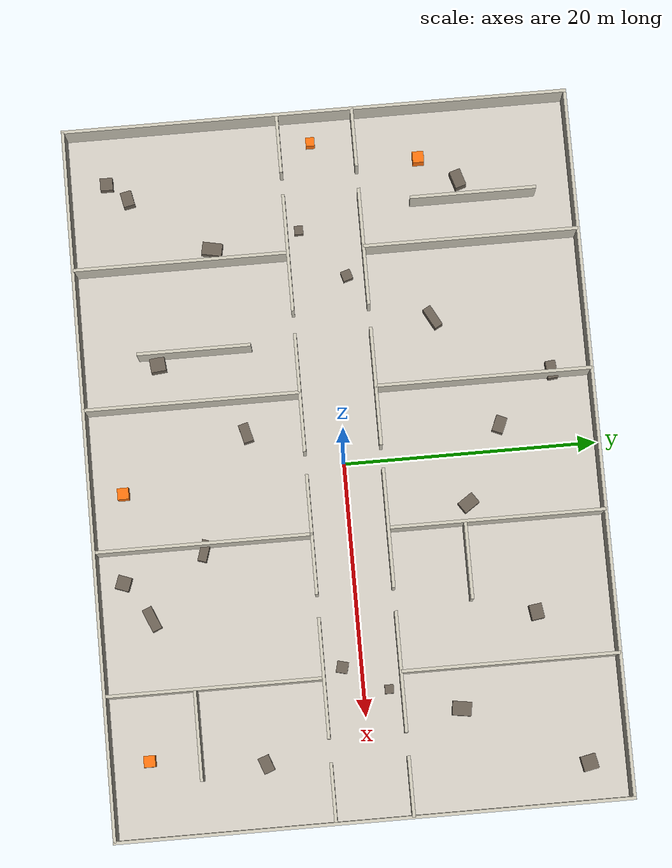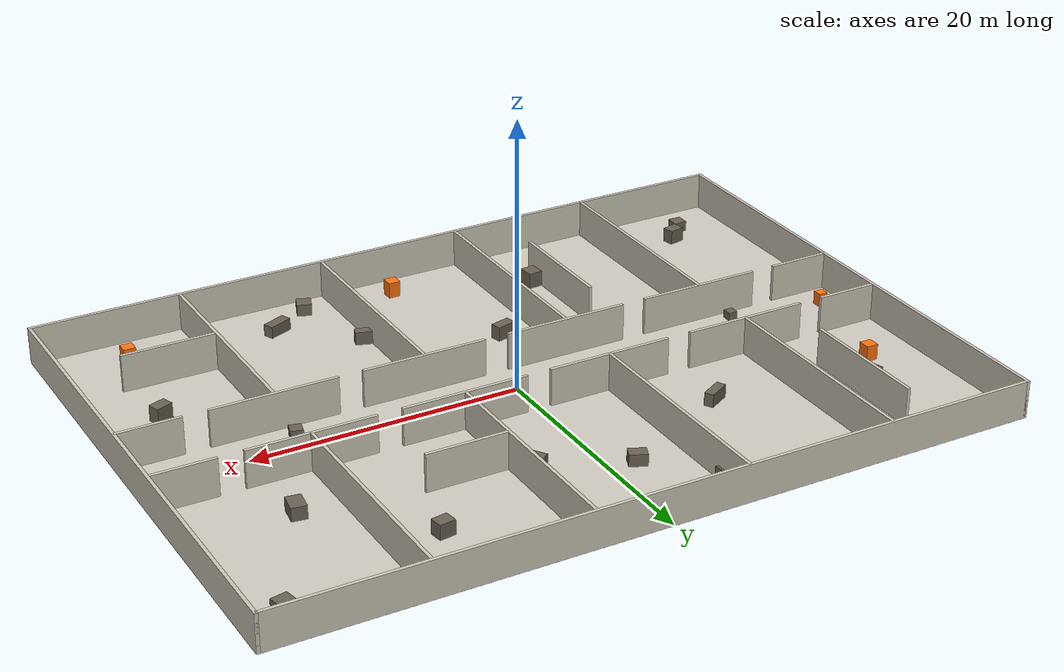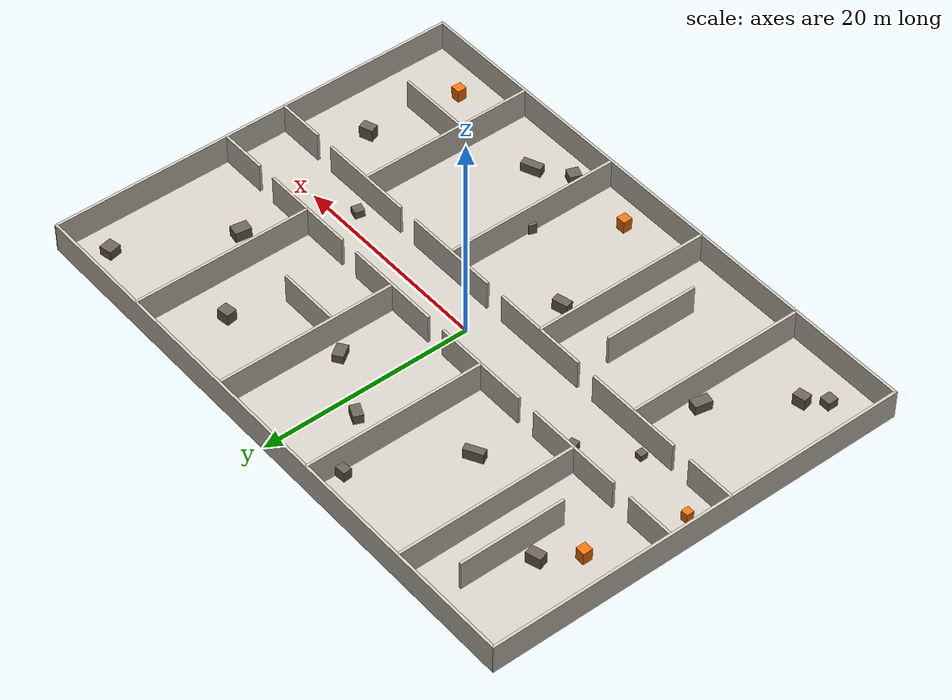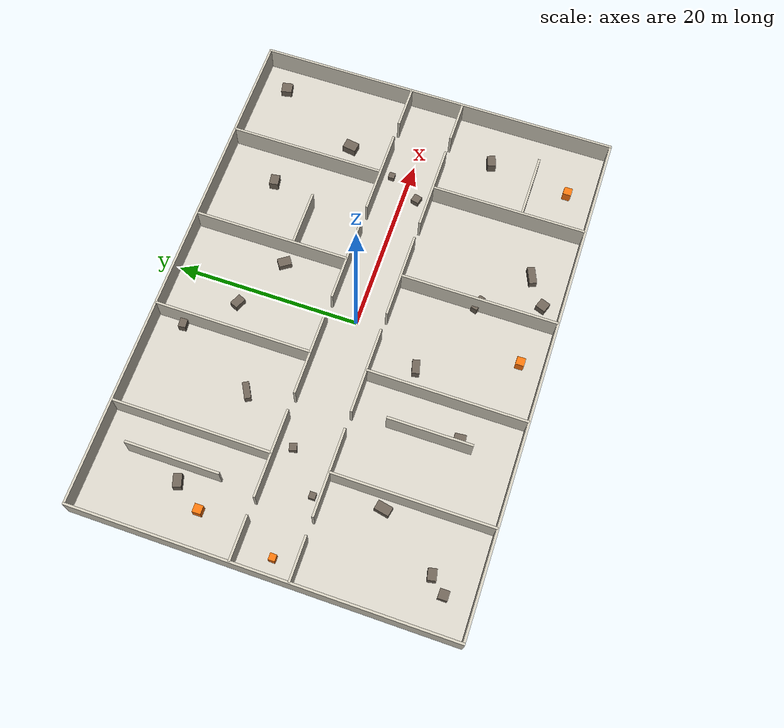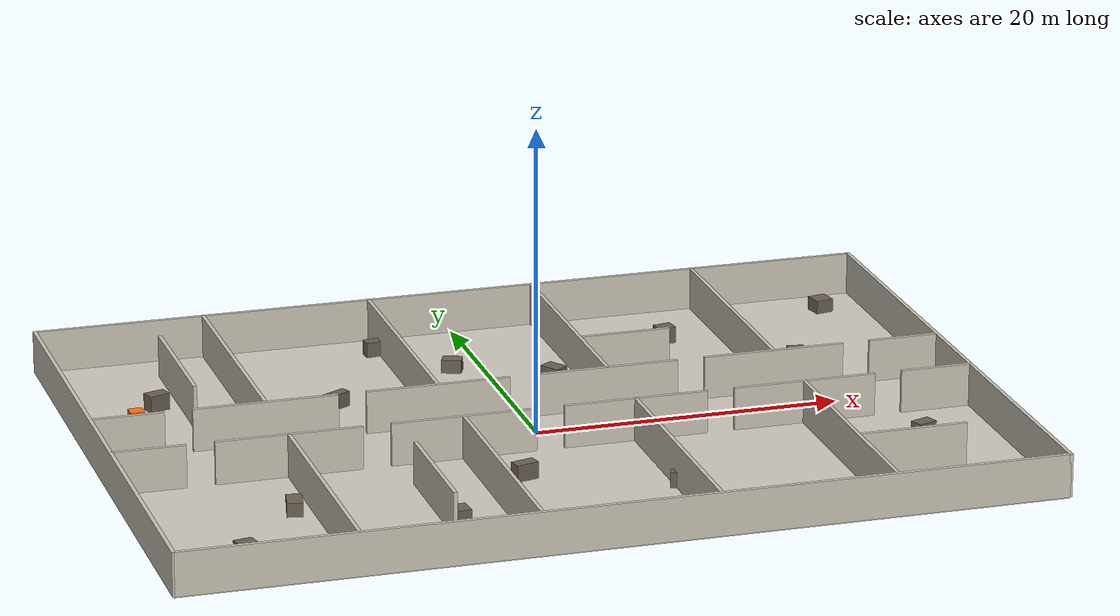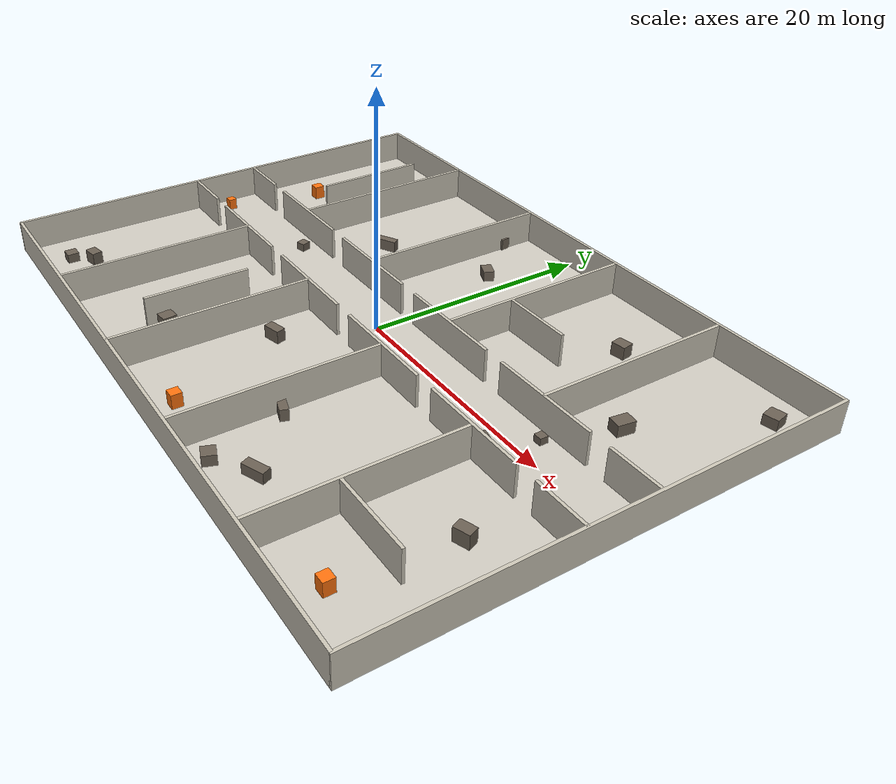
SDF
<sdf version="1.7">
 <world name="rescue_building_large">
  <model name="floor">
   <static>true</static>
   <pose>0 0 -0.05 0 0 0.0</pose>
   <link name="link">
    <collision name="col"><geometry><box><size>56.0 40.0 0.1</size></box></geometry></collision>
    <visual name="vis">
     <geometry><box><size>56.0 40.0 0.1</size></box></geometry>
     <material><ambient>0.82 0.8 0.76 1</ambient><diffuse>0.82 0.8 0.76 1</diffuse></material>
    </visual>
   </link>
  </model>
  <model name="outer_wall_north">
   <static>true</static>
   <pose>0 20.0 1.4 0 0 0.0</pose>
   <link name="link">
    <collision name="col"><geometry><box><size>56.0 0.25 2.8</size></box></geometry></collision>
    <visual name="vis">
     <geometry><box><size>56.0 0.25 2.8</size></box></geometry>
     <material><ambient>0.8 0.78 0.72 1</ambient><diffuse>0.8 0.78 0.72 1</diffuse></material>
    </visual>
   </link>
  </model>
  <model name="outer_wall_south">
   <static>true</static>
   <pose>0 -20.0 1.4 0 0 0.0</pose>
   <link name="link">
    <collision name="col"><geometry><box><size>56.0 0.25 2.8</size></box></geometry></collision>
    <visual name="vis">
     <geometry><box><size>56.0 0.25 2.8</size></box></geometry>
     <material><ambient>0.8 0.78 0.72 1</ambient><diffuse>0.8 0.78 0.72 1</diffuse></material>
    </visual>
   </link>
  </model>
  <model name="outer_wall_east">
   <static>true</static>
   <pose>28.0 0 1.4 0 0 0.0</pose>
   <link name="link">
    <collision name="col"><geometry><box><size>0.25 40.25 2.8</size></box></geometry></collision>
    <visual name="vis">
     <geometry><box><size>0.25 40.25 2.8</size></box></geometry>
     <material><ambient>0.8 0.78 0.72 1</ambient><diffuse>0.8 0.78 0.72 1</diffuse></material>
    </visual>
   </link>
  </model>
  <model name="outer_wall_west">
   <static>true</static>
   <pose>-28.0 0 1.4 0 0 0.0</pose>
   <link name="link">
    <collision name="col"><geometry><box><size>0.25 40.25 2.8</size></box></geometry></collision>
    <visual name="vis">
     <geometry><box><size>0.25 40.25 2.8</size></box></geometry>
     <material><ambient>0.8 0.78 0.72 1</ambient><diffuse>0.8 0.78 0.72 1</diffuse></material>
    </visual>
   </link>
  </model>
  <model name="corridor_wall_north_0">
   <static>true</static>
   <pose>-25.65 3.0 1.4 0 0 0.0</pose>
   <link name="link">
    <collision name="col"><geometry><box><size>4.700000000000003 0.25 2.8</size></box></geometry></collision>
    <visual name="vis">
     <geometry><box><size>4.700000000000003 0.25 2.8</size></box></geometry>
     <material><ambient>0.8 0.78 0.72 1</ambient><diffuse>0.8 0.78 0.72 1</diffuse></material>
    </visual>
   </link>
  </model>
  <model name="corridor_wall_north_2">
   <static>true</static>
   <pose>-16.8 3.0 1.4 0 0 0.0</pose>
   <link name="link">
    <collision name="col"><geometry><box><size>9.399999999999997 0.25 2.8</size></box></geometry></collision>
    <visual name="vis">
     <geometry><box><size>9.399999999999997 0.25 2.8</size></box></geometry>
     <material><ambient>0.8 0.78 0.72 1</ambient><diffuse>0.8 0.78 0.72 1</diffuse></material>
    </visual>
   </link>
  </model>
  <model name="corridor_wall_north_4">
   <static>true</static>
   <pose>-5.600000000000001 3.0 1.4 0 0 0.0</pose>
   <link name="link">
    <collision name="col"><geometry><box><size>9.400000000000002 0.25 2.8</size></box></geometry></collision>
    <visual name="vis">
     <geometry><box><size>9.400000000000002 0.25 2.8</size></box></geometry>
     <material><ambient>0.8 0.78 0.72 1</ambient><diffuse>0.8 0.78 0.72 1</diffuse></material>
    </visual>
   </link>
  </model>
  <model name="corridor_wall_north_6">
   <static>true</static>
   <pose>5.599999999999998 3.0 1.4 0 0 0.0</pose>
   <link name="link">
    <collision name="col"><geometry><box><size>9.399999999999995 0.25 2.8</size></box></geometry></collision>
    <visual name="vis">
     <geometry><box><size>9.399999999999995 0.25 2.8</size></box></geometry>
     <material><ambient>0.8 0.78 0.72 1</ambient><diffuse>0.8 0.78 0.72 1</diffuse></material>
    </visual>
   </link>
  </model>
  <model name="corridor_wall_north_8">
   <static>true</static>
   <pose>16.799999999999997 3.0 1.4 0 0 0.0</pose>
   <link name="link">
    <collision name="col"><geometry><box><size>9.400000000000004 0.25 2.8</size></box></geometry></collision>
    <visual name="vis">
     <geometry><box><size>9.400000000000004 0.25 2.8</size></box></geometry>
     <material><ambient>0.8 0.78 0.72 1</ambient><diffuse>0.8 0.78 0.72 1</diffuse></material>
    </visual>
   </link>
  </model>
  <model name="corridor_wall_north_10">
   <static>true</static>
   <pose>25.65 3.0 1.4 0 0 0.0</pose>
   <link name="link">
    <collision name="col"><geometry><box><size>4.700000000000003 0.25 2.8</size></box></geometry></collision>
    <visual name="vis">
     <geometry><box><size>4.700000000000003 0.25 2.8</size></box></geometry>
     <material><ambient>0.8 0.78 0.72 1</ambient><diffuse>0.8 0.78 0.72 1</diffuse></material>
    </visual>
   </link>
  </model>
  <model name="corridor_wall_south_0">
   <static>true</static>
   <pose>-25.65 -3.0 1.4 0 0 0.0</pose>
   <link name="link">
    <collision name="col"><geometry><box><size>4.700000000000003 0.25 2.8</size></box></geometry></collision>
    <visual name="vis">
     <geometry><box><size>4.700000000000003 0.25 2.8</size></box></geometry>
     <material><ambient>0.8 0.78 0.72 1</ambient><diffuse>0.8 0.78 0.72 1</diffuse></material>
    </visual>
   </link>
  </model>
  <model name="corridor_wall_south_2">
   <static>true</static>
   <pose>-16.8 -3.0 1.4 0 0 0.0</pose>
   <link name="link">
    <collision name="col"><geometry><box><size>9.399999999999997 0.25 2.8</size></box></geometry></collision>
    <visual name="vis">
     <geometry><box><size>9.399999999999997 0.25 2.8</size></box></geometry>
     <material><ambient>0.8 0.78 0.72 1</ambient><diffuse>0.8 0.78 0.72 1</diffuse></material>
    </visual>
   </link>
  </model>
  <model name="corridor_wall_south_4">
   <static>true</static>
   <pose>-5.600000000000001 -3.0 1.4 0 0 0.0</pose>
   <link name="link">
    <collision name="col"><geometry><box><size>9.400000000000002 0.25 2.8</size></box></geometry></collision>
    <visual name="vis">
     <geometry><box><size>9.400000000000002 0.25 2.8</size></box></geometry>
     <material><ambient>0.8 0.78 0.72 1</ambient><diffuse>0.8 0.78 0.72 1</diffuse></material>
    </visual>
   </link>
  </model>
  <model name="corridor_wall_south_6">
   <static>true</static>
   <pose>5.599999999999998 -3.0 1.4 0 0 0.0</pose>
   <link name="link">
    <collision name="col"><geometry><box><size>9.399999999999995 0.25 2.8</size></box></geometry></collision>
    <visual name="vis">
     <geometry><box><size>9.399999999999995 0.25 2.8</size></box></geometry>
     <material><ambient>0.8 0.78 0.72 1</ambient><diffuse>0.8 0.78 0.72 1</diffuse></material>
    </visual>
   </link>
  </model>
  <model name="corridor_wall_south_8">
   <static>true</static>
   <pose>16.799999999999997 -3.0 1.4 0 0 0.0</pose>
   <link name="link">
    <collision name="col"><geometry><box><size>9.400000000000004 0.25 2.8</size></box></geometry></collision>
    <visual name="vis">
     <geometry><box><size>9.400000000000004 0.25 2.8</size></box></geometry>
     <material><ambient>0.8 0.78 0.72 1</ambient><diffuse>0.8 0.78 0.72 1</diffuse></material>
    </visual>
   </link>
  </model>
  <model name="corridor_wall_south_10">
   <static>true</static>
   <pose>25.65 -3.0 1.4 0 0 0.0</pose>
   <link name="link">
    <collision name="col"><geometry><box><size>4.700000000000003 0.25 2.8</size></box></geometry></collision>
    <visual name="vis">
     <geometry><box><size>4.700000000000003 0.25 2.8</size></box></geometry>
     <material><ambient>0.8 0.78 0.72 1</ambient><diffuse>0.8 0.78 0.72 1</diffuse></material>
    </visual>
   </link>
  </model>
  <model name="divider_north_1">
   <static>true</static>
   <pose>-16.8 11.5 1.4 0 0 0.0</pose>
   <link name="link">
    <collision name="col"><geometry><box><size>0.25 17.0 2.8</size></box></geometry></collision>
    <visual name="vis">
     <geometry><box><size>0.25 17.0 2.8</size></box></geometry>
     <material><ambient>0.8 0.78 0.72 1</ambient><diffuse>0.8 0.78 0.72 1</diffuse></material>
    </visual>
   </link>
  </model>
  <model name="divider_south_1">
   <static>true</static>
   <pose>-16.8 -11.5 1.4 0 0 0.0</pose>
   <link name="link">
    <collision name="col"><geometry><box><size>0.25 17.0 2.8</size></box></geometry></collision>
    <visual name="vis">
     <geometry><box><size>0.25 17.0 2.8</size></box></geometry>
     <material><ambient>0.8 0.78 0.72 1</ambient><diffuse>0.8 0.78 0.72 1</diffuse></material>
    </visual>
   </link>
  </model>
  <model name="divider_north_2">
   <static>true</static>
   <pose>-5.600000000000001 11.5 1.4 0 0 0.0</pose>
   <link name="link">
    <collision name="col"><geometry><box><size>0.25 17.0 2.8</size></box></geometry></collision>
    <visual name="vis">
     <geometry><box><size>0.25 17.0 2.8</size></box></geometry>
     <material><ambient>0.8 0.78 0.72 1</ambient><diffuse>0.8 0.78 0.72 1</diffuse></material>
    </visual>
   </link>
  </model>
  <model name="divider_south_2">
   <static>true</static>
   <pose>-5.600000000000001 -11.5 1.4 0 0 0.0</pose>
   <link name="link">
    <collision name="col"><geometry><box><size>0.25 17.0 2.8</size></box></geometry></collision>
    <visual name="vis">
     <geometry><box><size>0.25 17.0 2.8</size></box></geometry>
     <material><ambient>0.8 0.78 0.72 1</ambient><diffuse>0.8 0.78 0.72 1</diffuse></material>
    </visual>
   </link>
  </model>
  <model name="divider_north_3">
   <static>true</static>
   <pose>5.599999999999994 11.5 1.4 0 0 0.0</pose>
   <link name="link">
    <collision name="col"><geometry><box><size>0.25 17.0 2.8</size></box></geometry></collision>
    <visual name="vis">
     <geometry><box><size>0.25 17.0 2.8</size></box></geometry>
     <material><ambient>0.8 0.78 0.72 1</ambient><diffuse>0.8 0.78 0.72 1</diffuse></material>
    </visual>
   </link>
  </model>
  <model name="divider_south_3">
   <static>true</static>
   <pose>5.599999999999994 -11.5 1.4 0 0 0.0</pose>
   <link name="link">
    <collision name="col"><geometry><box><size>0.25 17.0 2.8</size></box></geometry></collision>
    <visual name="vis">
     <geometry><box><size>0.25 17.0 2.8</size></box></geometry>
     <material><ambient>0.8 0.78 0.72 1</ambient><diffuse>0.8 0.78 0.72 1</diffuse></material>
    </visual>
   </link>
  </model>
  <model name="divider_north_4">
   <static>true</static>
   <pose>16.799999999999997 11.5 1.4 0 0 0.0</pose>
   <link name="link">
    <collision name="col"><geometry><box><size>0.25 17.0 2.8</size></box></geometry></collision>
    <visual name="vis">
     <geometry><box><size>0.25 17.0 2.8</size></box></geometry>
     <material><ambient>0.8 0.78 0.72 1</ambient><diffuse>0.8 0.78 0.72 1</diffuse></material>
    </visual>
   </link>
  </model>
  <model name="divider_south_4">
   <static>true</static>
   <pose>16.799999999999997 -11.5 1.4 0 0 0.0</pose>
   <link name="link">
    <collision name="col"><geometry><box><size>0.25 17.0 2.8</size></box></geometry></collision>
    <visual name="vis">
     <geometry><box><size>0.25 17.0 2.8</size></box></geometry>
     <material><ambient>0.8 0.78 0.72 1</ambient><diffuse>0.8 0.78 0.72 1</diffuse></material>
    </visual>
   </link>
  </model>
  <model name="inner_n1">
   <static>true</static>
   <pose>-20.4 12.0 1.4 0 0 0.0</pose>
   <link name="link">
    <collision name="col"><geometry><box><size>0.25 10.0 2.8</size></box></geometry></collision>
    <visual name="vis">
     <geometry><box><size>0.25 10.0 2.8</size></box></geometry>
     <material><ambient>0.8 0.78 0.72 1</ambient><diffuse>0.8 0.78 0.72 1</diffuse></material>
    </visual>
   </link>
  </model>
  <model name="inner_n4">
   <static>true</static>
   <pose>8.699999999999996 9.0 1.4 0 0 0.0</pose>
   <link name="link">
    <collision name="col"><geometry><box><size>6.0 0.25 2.8</size></box></geometry></collision>
    <visual name="vis">
     <geometry><box><size>6.0 0.25 2.8</size></box></geometry>
     <material><ambient>0.8 0.78 0.72 1</ambient><diffuse>0.8 0.78 0.72 1</diffuse></material>
    </visual>
   </link>
  </model>
  <model name="inner_s2">
   <static>true</static>
   <pose>-9.700000000000003 -11.0 1.4 0 0 0.0</pose>
   <link name="link">
    <collision name="col"><geometry><box><size>0.25 9.0 2.8</size></box></geometry></collision>
    <visual name="vis">
     <geometry><box><size>0.25 9.0 2.8</size></box></geometry>
     <material><ambient>0.8 0.78 0.72 1</ambient><diffuse>0.8 0.78 0.72 1</diffuse></material>
    </visual>
   </link>
  </model>
  <model name="inner_s5">
   <static>true</static>
   <pose>20.4 -13.0 1.4 0 0 0.0</pose>
   <link name="link">
    <collision name="col"><geometry><box><size>7.0 0.25 2.8</size></box></geometry></collision>
    <visual name="vis">
     <geometry><box><size>7.0 0.25 2.8</size></box></geometry>
     <material><ambient>0.8 0.78 0.72 1</ambient><diffuse>0.8 0.78 0.72 1</diffuse></material>
    </visual>
   </link>
  </model>
  <model name="debris_1">
   <static>true</static>
   <pose>-22 11 0.55 0 0 0.3</pose>
   <link name="link">
    <collision name="col"><geometry><box><size>1.4 0.9 1.1</size></box></geometry></collision>
    <visual name="vis">
     <geometry><box><size>1.4 0.9 1.1</size></box></geometry>
     <material><ambient>0.42 0.38 0.33 1</ambient><diffuse>0.42 0.38 0.33 1</diffuse></material>
    </visual>
   </link>
  </model>
  <model name="debris_2">
   <static>true</static>
   <pose>-18 -9 0.45 0 0 -0.2</pose>
   <link name="link">
    <collision name="col"><geometry><box><size>1.0 1.6 0.9</size></box></geometry></collision>
    <visual name="vis">
     <geometry><box><size>1.0 1.6 0.9</size></box></geometry>
     <material><ambient>0.42 0.38 0.33 1</ambient><diffuse>0.42 0.38 0.33 1</diffuse></material>
    </visual>
   </link>
  </model>
  <model name="debris_3">
   <static>true</static>
   <pose>-11 8 0.5 0 0 0.5</pose>
   <link name="link">
    <collision name="col"><geometry><box><size>1.8 0.7 1.0</size></box></geometry></collision>
    <visual name="vis">
     <geometry><box><size>1.8 0.7 1.0</size></box></geometry>
     <material><ambient>0.42 0.38 0.33 1</ambient><diffuse>0.42 0.38 0.33 1</diffuse></material>
    </visual>
   </link>
  </model>
  <model name="debris_4">
   <static>true</static>
   <pose>-9 -14 0.6 0 0 0.1</pose>
   <link name="link">
    <collision name="col"><geometry><box><size>1.1 1.2 1.2</size></box></geometry></collision>
    <visual name="vis">
     <geometry><box><size>1.1 1.2 1.2</size></box></geometry>
     <material><ambient>0.42 0.38 0.33 1</ambient><diffuse>0.42 0.38 0.33 1</diffuse></material>
    </visual>
   </link>
  </model>
  <model name="debris_5">
   <static>true</static>
   <pose>-2 12.5 0.45 0 0 -0.4</pose>
   <link name="link">
    <collision name="col"><geometry><box><size>1.3 0.9 0.9</size></box></geometry></collision>
    <visual name="vis">
     <geometry><box><size>1.3 0.9 0.9</size></box></geometry>
     <material><ambient>0.42 0.38 0.33 1</ambient><diffuse>0.42 0.38 0.33 1</diffuse></material>
    </visual>
   </link>
  </model>
  <model name="debris_6">
   <static>true</static>
   <pose>-3 -7.5 0.55 0 0 0.25</pose>
   <link name="link">
    <collision name="col"><geometry><box><size>1.5 0.8 1.1</size></box></geometry></collision>
    <visual name="vis">
     <geometry><box><size>1.5 0.8 1.1</size></box></geometry>
     <material><ambient>0.42 0.38 0.33 1</ambient><diffuse>0.42 0.38 0.33 1</diffuse></material>
    </visual>
   </link>
  </model>
  <model name="debris_7">
   <static>true</static>
   <pose>4 9.5 0.4 0 0 0.6</pose>
   <link name="link">
    <collision name="col"><geometry><box><size>1.0 1.4 0.8</size></box></geometry></collision>
    <visual name="vis">
     <geometry><box><size>1.0 1.4 0.8</size></box></geometry>
     <material><ambient>0.42 0.38 0.33 1</ambient><diffuse>0.42 0.38 0.33 1</diffuse></material>
    </visual>
   </link>
  </model>
  <model name="debris_8">
   <static>true</static>
   <pose>6 -11.5 0.5 0 0 -0.3</pose>
   <link name="link">
    <collision name="col"><geometry><box><size>1.7 0.7 1.0</size></box></geometry></collision>
    <visual name="vis">
     <geometry><box><size>1.7 0.7 1.0</size></box></geometry>
     <material><ambient>0.42 0.38 0.33 1</ambient><diffuse>0.42 0.38 0.33 1</diffuse></material>
    </visual>
   </link>
  </model>
  <model name="debris_9">
   <static>true</static>
   <pose>13 14 0.55 0 0 0.15</pose>
   <link name="link">
    <collision name="col"><geometry><box><size>1.2 1.0 1.1</size></box></geometry></collision>
    <visual name="vis">
     <geometry><box><size>1.2 1.0 1.1</size></box></geometry>
     <material><ambient>0.42 0.38 0.33 1</ambient><diffuse>0.42 0.38 0.33 1</diffuse></material>
    </visual>
   </link>
  </model>
  <model name="debris_10">
   <static>true</static>
   <pose>11 -16 0.45 0 0 0.4</pose>
   <link name="link">
    <collision name="col"><geometry><box><size>1.9 0.8 0.9</size></box></geometry></collision>
    <visual name="vis">
     <geometry><box><size>1.9 0.8 0.9</size></box></geometry>
     <material><ambient>0.42 0.38 0.33 1</ambient><diffuse>0.42 0.38 0.33 1</diffuse></material>
    </visual>
   </link>
  </model>
  <model name="debris_11">
   <static>true</static>
   <pose>20 7.5 0.5 0 0 -0.15</pose>
   <link name="link">
    <collision name="col"><geometry><box><size>1.1 1.5 1.0</size></box></geometry></collision>
    <visual name="vis">
     <geometry><box><size>1.1 1.5 1.0</size></box></geometry>
     <material><ambient>0.42 0.38 0.33 1</ambient><diffuse>0.42 0.38 0.33 1</diffuse></material>
    </visual>
   </link>
  </model>
  <model name="debris_12">
   <static>true</static>
   <pose>23 -8 0.6 0 0 0.35</pose>
   <link name="link">
    <collision name="col"><geometry><box><size>1.3 0.9 1.2</size></box></geometry></collision>
    <visual name="vis">
     <geometry><box><size>1.3 0.9 1.2</size></box></geometry>
     <material><ambient>0.42 0.38 0.33 1</ambient><diffuse>0.42 0.38 0.33 1</diffuse></material>
    </visual>
   </link>
  </model>
  <model name="debris_13">
   <static>true</static>
   <pose>-24 -17 0.4 0 0 0.0</pose>
   <link name="link">
    <collision name="col"><geometry><box><size>1.0 1.0 0.8</size></box></geometry></collision>
    <visual name="vis">
     <geometry><box><size>1.0 1.0 0.8</size></box></geometry>
     <material><ambient>0.42 0.38 0.33 1</ambient><diffuse>0.42 0.38 0.33 1</diffuse></material>
    </visual>
   </link>
  </model>
  <model name="debris_14">
   <static>true</static>
   <pose>25 17 0.45 0 0 0.2</pose>
   <link name="link">
    <collision name="col"><geometry><box><size>1.2 1.2 0.9</size></box></geometry></collision>
    <visual name="vis">
     <geometry><box><size>1.2 1.2 0.9</size></box></geometry>
     <material><ambient>0.42 0.38 0.33 1</ambient><diffuse>0.42 0.38 0.33 1</diffuse></material>
    </visual>
   </link>
  </model>
  <model name="debris_15">
   <static>true</static>
   <pose>-15 1.5 0.35 0 0 0.3</pose>
   <link name="link">
    <collision name="col"><geometry><box><size>0.8 0.8 0.7</size></box></geometry></collision>
    <visual name="vis">
     <geometry><box><size>0.8 0.8 0.7</size></box></geometry>
     <material><ambient>0.42 0.38 0.33 1</ambient><diffuse>0.42 0.38 0.33 1</diffuse></material>
    </visual>
   </link>
  </model>
  <model name="debris_16">
   <static>true</static>
   <pose>16 -1.5 0.35 0 0 -0.25</pose>
   <link name="link">
    <collision name="col"><geometry><box><size>0.9 0.9 0.7</size></box></geometry></collision>
    <visual name="vis">
     <geometry><box><size>0.9 0.9 0.7</size></box></geometry>
     <material><ambient>0.42 0.38 0.33 1</ambient><diffuse>0.42 0.38 0.33 1</diffuse></material>
    </visual>
   </link>
  </model>
  <model name="debris_17">
   <static>true</static>
   <pose>-6 17 0.5 0 0 0.1</pose>
   <link name="link">
    <collision name="col"><geometry><box><size>1.4 0.8 1.0</size></box></geometry></collision>
    <visual name="vis">
     <geometry><box><size>1.4 0.8 1.0</size></box></geometry>
     <material><ambient>0.42 0.38 0.33 1</ambient><diffuse>0.42 0.38 0.33 1</diffuse></material>
    </visual>
   </link>
  </model>
  <model name="debris_18">
   <static>true</static>
   <pose>8 -18 0.45 0 0 -0.35</pose>
   <link name="link">
    <collision name="col"><geometry><box><size>1.1 1.1 0.9</size></box></geometry></collision>
    <visual name="vis">
     <geometry><box><size>1.1 1.1 0.9</size></box></geometry>
     <material><ambient>0.42 0.38 0.33 1</ambient><diffuse>0.42 0.38 0.33 1</diffuse></material>
    </visual>
   </link>
  </model>
  <model name="debris_19">
   <static>true</static>
   <pose>18 2.0 0.3 0 0 0.0</pose>
   <link name="link">
    <collision name="col"><geometry><box><size>0.7 0.7 0.6</size></box></geometry></collision>
    <visual name="vis">
     <geometry><box><size>0.7 0.7 0.6</size></box></geometry>
     <material><ambient>0.42 0.38 0.33 1</ambient><diffuse>0.42 0.38 0.33 1</diffuse></material>
    </visual>
   </link>
  </model>
  <model name="debris_20">
   <static>true</static>
   <pose>-19 -2.0 0.3 0 0 0.0</pose>
   <link name="link">
    <collision name="col"><geometry><box><size>0.7 0.7 0.6</size></box></geometry></collision>
    <visual name="vis">
     <geometry><box><size>0.7 0.7 0.6</size></box></geometry>
     <material><ambient>0.42 0.38 0.33 1</ambient><diffuse>0.42 0.38 0.33 1</diffuse></material>
    </visual>
   </link>
  </model>
  <model name="debris_occluder">
   <static>true</static>
   <pose>-22.6 -15.4 0.55 0 0 0.2</pose>
   <link name="link">
    <collision name="col"><geometry><box><size>1.2 0.9 1.1</size></box></geometry></collision>
    <visual name="vis">
     <geometry><box><size>1.2 0.9 1.1</size></box></geometry>
     <material><ambient>0.42 0.38 0.33 1</ambient><diffuse>0.42 0.38 0.33 1</diffuse></material>
    </visual>
   </link>
  </model>
  <model name="fire_source_1">
   <static>true</static>
   <pose>-24.0 8.0 0.6 0 0 0</pose>
   <link name="link">
    <visual name="vis">
     <geometry><box><size>0.9 0.9 1.2</size></box></geometry>
     <material>
      <ambient>1.0 0.45 0.05 1</ambient>
      <diffuse>1.0 0.45 0.05 1</diffuse>
      <emissive>1.0 0.5 0.1 1</emissive>
     </material>
     <plugin filename="gz-sim-thermal-system" name="gz::sim::systems::Thermal">
      <temperature>600.0</temperature>
     </plugin>
    </visual>
   </link>
  </model>
  <model name="fire_source_2">
   <static>true</static>
   <pose>22.0 -17.0 0.6 0 0 0</pose>
   <link name="link">
    <visual name="vis">
     <geometry><box><size>0.9 0.9 1.2</size></box></geometry>
     <material>
      <ambient>1.0 0.45 0.05 1</ambient>
      <diffuse>1.0 0.45 0.05 1</diffuse>
      <emissive>1.0 0.5 0.1 1</emissive>
     </material>
     <plugin filename="gz-sim-thermal-system" name="gz::sim::systems::Thermal">
      <temperature>600.0</temperature>
     </plugin>
    </visual>
   </link>
  </model>
  <model name="fire_source_3">
   <static>true</static>
   <pose>1.0 -17.5 0.6 0 0 0</pose>
   <link name="link">
    <visual name="vis">
     <geometry><box><size>0.9 0.9 1.2</size></box></geometry>
     <material>
      <ambient>1.0 0.45 0.05 1</ambient>
      <diffuse>1.0 0.45 0.05 1</diffuse>
      <emissive>1.0 0.5 0.1 1</emissive>
     </material>
     <plugin filename="gz-sim-thermal-system" name="gz::sim::systems::Thermal">
      <temperature>600.0</temperature>
     </plugin>
    </visual>
   </link>
  </model>
  <model name="fire_source_4">
   <static>true</static>
   <pose>-26.0 -0.5 0.6 0 0 0</pose>
   <link name="link">
    <visual name="vis">
     <geometry><box><size>0.7 0.7 1.0</size></box></geometry>
     <material>
      <ambient>1.0 0.45 0.05 1</ambient>
      <diffuse>1.0 0.45 0.05 1</diffuse>
      <emissive>1.0 0.5 0.1 1</emissive>
     </material>
     <plugin filename="gz-sim-thermal-system" name="gz::sim::systems::Thermal">
      <temperature>600.0</temperature>
     </plugin>
    </visual>
   </link>
  </model>
 </world>
</sdf>
